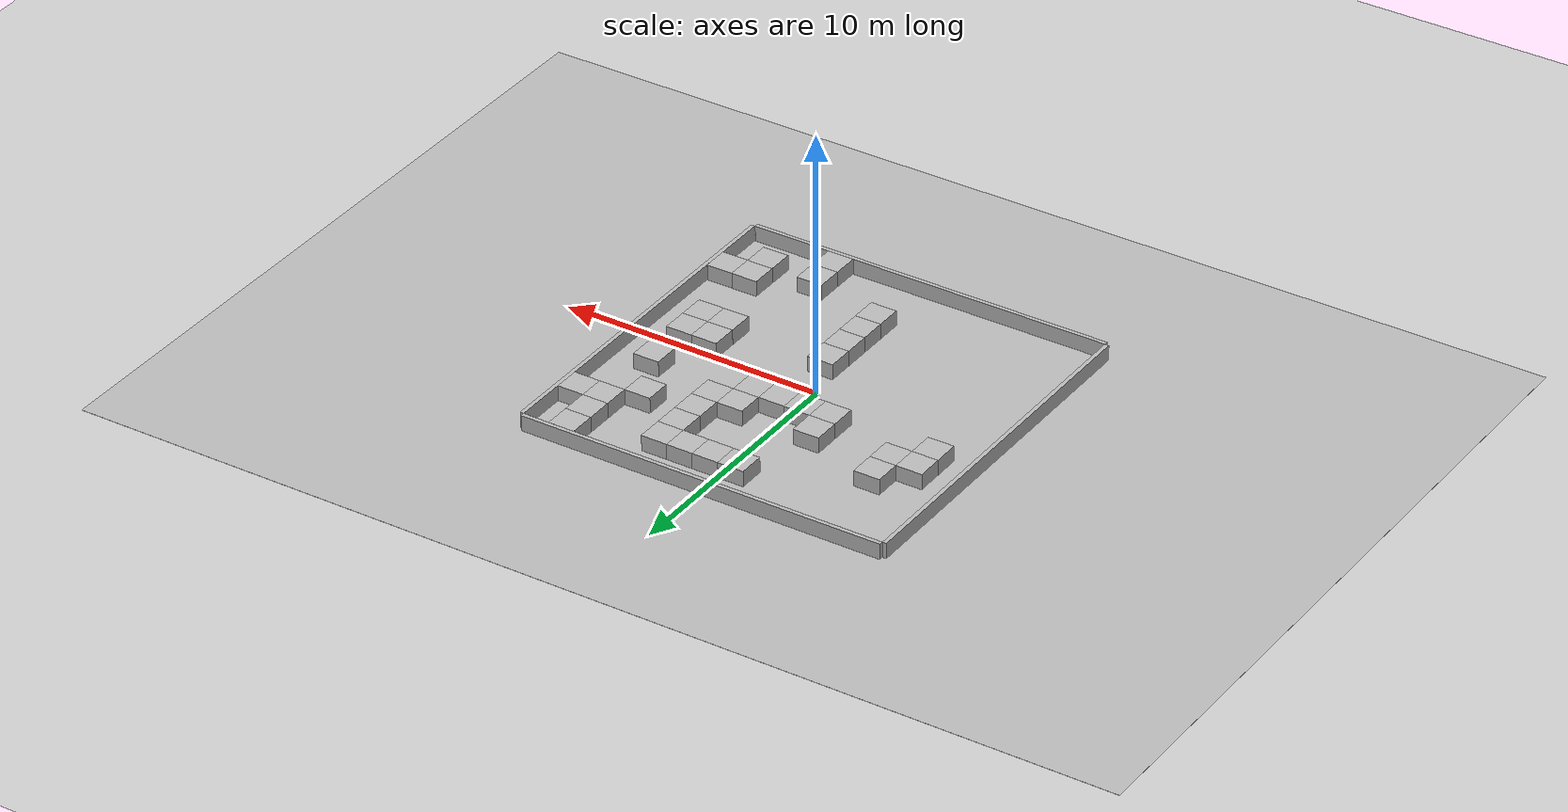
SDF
<sdf version="1.6">
 <world name="default">
  <model name="ground_plane">
   <static>1</static>
   <link name="link">
    <collision name="collision">
     <geometry><plane><normal>0 0 1</normal><size>50 50</size></plane></geometry>
     <surface><friction><ode><mu>100</mu><mu2>50</mu2></ode></friction></surface>
    </collision>
    <visual name="visual">
     <cast_shadows>0</cast_shadows>
     <geometry><plane><normal>0 0 1</normal><size>100 100</size></plane></geometry>
     <material>
      <script><name>Gazebo/Grey</name><uri>file://media/materials/scripts/gazebo.material</uri></script>
     </material>
    </visual>
    <velocity_decay><linear>0</linear><angular>0</angular></velocity_decay>
   </link>
  </model>
  <model name="unit_box">
   <pose>5.5 6.5 0.5 0 -0 0</pose>
   <static>1</static>
   <link name="link">
    <inertial>
     <mass>1</mass>
     <inertia>
      <ixx>0.166667</ixx>
      <ixy>0</ixy>
      <ixz>0</ixz>
      <iyy>0.166667</iyy>
      <iyz>0</iyz>
      <izz>0.166667</izz>
     </inertia>
    </inertial>
    <collision name="collision"><geometry><box><size>0.999998 1 1</size></box></geometry></collision>
    <visual name="visual">
     <geometry><mesh><uri>model://concrete_cube_1m/meshes/concrete_cube_1m.dae</uri></mesh></geometry>
    </visual>
   </link>
  </model>
  <model name="outer_barrier_1">
   <pose>-7.075 0 0.5 0 -0 0</pose>
   <static>1</static>
   <link name="link">
    <inertial>
     <mass>1</mass>
     <inertia>
      <ixx>0.166667</ixx>
      <ixy>0</ixy>
      <ixz>0</ixz>
      <iyy>0.166667</iyy>
      <iyz>0</iyz>
      <izz>0.166667</izz>
     </inertia>
    </inertial>
    <collision name="collision"><geometry><box><size>0.2 14 1</size></box></geometry></collision>
    <visual name="visual">
     <geometry><mesh><uri>model://concrete_barrier_14m/meshes/concrete_barrier_14m.dae</uri></mesh></geometry>
    </visual>
   </link>
  </model>
  <model name="outer_barrier_2">
   <pose>7.075 0 0.5 0 -0 0</pose>
   <static>1</static>
   <link name="link">
    <inertial>
     <mass>1</mass>
     <inertia>
      <ixx>0.166667</ixx>
      <ixy>0</ixy>
      <ixz>0</ixz>
      <iyy>0.166667</iyy>
      <iyz>0</iyz>
      <izz>0.166667</izz>
     </inertia>
    </inertial>
    <collision name="collision"><geometry><box><size>0.2 14 1</size></box></geometry></collision>
    <visual name="visual">
     <geometry><mesh><uri>model://concrete_barrier_14m/meshes/concrete_barrier_14m.dae</uri></mesh></geometry>
    </visual>
   </link>
  </model>
  <model name="outer_barrier_3">
   <pose>0 7.075 0.5 0 -0 1.5708</pose>
   <static>1</static>
   <link name="link">
    <inertial>
     <mass>1</mass>
     <inertia>
      <ixx>0.166667</ixx>
      <ixy>0</ixy>
      <ixz>0</ixz>
      <iyy>0.166667</iyy>
      <iyz>0</iyz>
      <izz>0.166667</izz>
     </inertia>
    </inertial>
    <collision name="collision"><geometry><box><size>0.2 14 1</size></box></geometry></collision>
    <visual name="visual">
     <geometry><mesh><uri>model://concrete_barrier_14m/meshes/concrete_barrier_14m.dae</uri></mesh></geometry>
    </visual>
   </link>
  </model>
  <model name="outer_barrier_4">
   <pose>0 -7.075 0.5 0 -0 1.5708</pose>
   <static>1</static>
   <link name="link">
    <inertial>
     <mass>1</mass>
     <inertia>
      <ixx>0.166667</ixx>
      <ixy>0</ixy>
      <ixz>0</ixz>
      <iyy>0.166667</iyy>
      <iyz>0</iyz>
      <izz>0.166667</izz>
     </inertia>
    </inertial>
    <collision name="collision"><geometry><box><size>0.2 14 1</size></box></geometry></collision>
    <visual name="visual">
     <geometry><mesh><uri>model://concrete_barrier_14m/meshes/concrete_barrier_14m.dae</uri></mesh></geometry>
    </visual>
   </link>
  </model>
  <model name="box_01">
   <pose>5.5 5.5 0.5 0 -0 0</pose>
   <static>1</static>
   <link name="link">
    <inertial>
     <mass>1</mass>
     <inertia>
      <ixx>0.166667</ixx>
      <ixy>0</ixy>
      <ixz>0</ixz>
      <iyy>0.166667</iyy>
      <iyz>0</iyz>
      <izz>0.166667</izz>
     </inertia>
    </inertial>
    <collision name="collision"><geometry><box><size>0.999998 1 1</size></box></geometry></collision>
    <visual name="visual">
     <geometry><mesh><uri>model://concrete_cube_1m/meshes/concrete_cube_1m.dae</uri></mesh></geometry>
    </visual>
   </link>
  </model>
  <model name="box_02">
   <pose>4.5 3.5 0.5 0 -0 0</pose>
   <static>1</static>
   <link name="link">
    <inertial>
     <mass>1</mass>
     <inertia>
      <ixx>0.166667</ixx>
      <ixy>0</ixy>
      <ixz>0</ixz>
      <iyy>0.166667</iyy>
      <iyz>0</iyz>
      <izz>0.166667</izz>
     </inertia>
    </inertial>
    <collision name="collision"><geometry><box><size>0.999998 1 1</size></box></geometry></collision>
    <visual name="visual">
     <geometry><mesh><uri>model://concrete_cube_1m/meshes/concrete_cube_1m.dae</uri></mesh></geometry>
    </visual>
   </link>
  </model>
  <model name="box_04">
   <pose>0.5 -1.5 0.5 0 -0 0</pose>
   <static>1</static>
   <link name="link">
    <inertial>
     <mass>1</mass>
     <inertia>
      <ixx>0.166667</ixx>
      <ixy>0</ixy>
      <ixz>0</ixz>
      <iyy>0.166667</iyy>
      <iyz>0</iyz>
      <izz>0.166667</izz>
     </inertia>
    </inertial>
    <collision name="collision"><geometry><box><size>0.999998 1 1</size></box></geometry></collision>
    <visual name="visual">
     <geometry><mesh><uri>model://concrete_cube_1m/meshes/concrete_cube_1m.dae</uri></mesh></geometry>
    </visual>
   </link>
  </model>
  <model name="box_05">
   <pose>0.5 -2.5 0.5 0 -0 0</pose>
   <static>1</static>
   <link name="link">
    <inertial>
     <mass>1</mass>
     <inertia>
      <ixx>0.166667</ixx>
      <ixy>0</ixy>
      <ixz>0</ixz>
      <iyy>0.166667</iyy>
      <iyz>0</iyz>
      <izz>0.166667</izz>
     </inertia>
    </inertial>
    <collision name="collision"><geometry><box><size>0.999998 1 1</size></box></geometry></collision>
    <visual name="visual">
     <geometry><mesh><uri>model://concrete_cube_1m/meshes/concrete_cube_1m.dae</uri></mesh></geometry>
    </visual>
   </link>
  </model>
  <model name="box_07">
   <pose>0.5 -3.5 0.5 0 -0 0</pose>
   <static>1</static>
   <link name="link">
    <inertial>
     <mass>1</mass>
     <inertia>
      <ixx>0.166667</ixx>
      <ixy>0</ixy>
      <ixz>0</ixz>
      <iyy>0.166667</iyy>
      <iyz>0</iyz>
      <izz>0.166667</izz>
     </inertia>
    </inertial>
    <collision name="collision"><geometry><box><size>0.999998 1 1</size></box></geometry></collision>
    <visual name="visual">
     <geometry><mesh><uri>model://concrete_cube_1m/meshes/concrete_cube_1m.dae</uri></mesh></geometry>
    </visual>
   </link>
  </model>
  <model name="box_08">
   <pose>3.5 -5.5 0.5 0 -0 0</pose>
   <static>1</static>
   <link name="link">
    <inertial>
     <mass>1</mass>
     <inertia>
      <ixx>0.166667</ixx>
      <ixy>0</ixy>
      <ixz>0</ixz>
      <iyy>0.166667</iyy>
      <iyz>0</iyz>
      <izz>0.166667</izz>
     </inertia>
    </inertial>
    <collision name="collision"><geometry><box><size>0.999998 1 1</size></box></geometry></collision>
    <visual name="visual">
     <geometry><mesh><uri>model://concrete_cube_1m/meshes/concrete_cube_1m.dae</uri></mesh></geometry>
    </visual>
   </link>
  </model>
  <model name="box_09">
   <pose>3.5 -6.5 0.5 0 -0 0</pose>
   <static>1</static>
   <link name="link">
    <inertial>
     <mass>1</mass>
     <inertia>
      <ixx>0.166667</ixx>
      <ixy>0</ixy>
      <ixz>0</ixz>
      <iyy>0.166667</iyy>
      <iyz>0</iyz>
      <izz>0.166667</izz>
     </inertia>
    </inertial>
    <collision name="collision"><geometry><box><size>0.999998 1 1</size></box></geometry></collision>
    <visual name="visual">
     <geometry><mesh><uri>model://concrete_cube_1m/meshes/concrete_cube_1m.dae</uri></mesh></geometry>
    </visual>
   </link>
  </model>
  <model name="box_10">
   <pose>2.5 5.5 0.5 0 -0 0</pose>
   <static>1</static>
   <link name="link">
    <inertial>
     <mass>1</mass>
     <inertia>
      <ixx>0.166667</ixx>
      <ixy>0</ixy>
      <ixz>0</ixz>
      <iyy>0.166667</iyy>
      <iyz>0</iyz>
      <izz>0.166667</izz>
     </inertia>
    </inertial>
    <collision name="collision"><geometry><box><size>0.999998 1 1</size></box></geometry></collision>
    <visual name="visual">
     <geometry><mesh><uri>model://concrete_cube_1m/meshes/concrete_cube_1m.dae</uri></mesh></geometry>
    </visual>
   </link>
  </model>
  <model name="box_11">
   <pose>1.5 2.5 0.5 0 -0 0</pose>
   <static>1</static>
   <link name="link">
    <inertial>
     <mass>1</mass>
     <inertia>
      <ixx>0.166667</ixx>
      <ixy>0</ixy>
      <ixz>0</ixz>
      <iyy>0.166667</iyy>
      <iyz>0</iyz>
      <izz>0.166667</izz>
     </inertia>
    </inertial>
    <collision name="collision"><geometry><box><size>0.999998 1 1</size></box></geometry></collision>
    <visual name="visual">
     <geometry><mesh><uri>model://concrete_cube_1m/meshes/concrete_cube_1m.dae</uri></mesh></geometry>
    </visual>
   </link>
  </model>
  <model name="box_12">
   <pose>-0.5 5.5 0.5 0 -0 0</pose>
   <static>1</static>
   <link name="link">
    <inertial>
     <mass>1</mass>
     <inertia>
      <ixx>0.166667</ixx>
      <ixy>0</ixy>
      <ixz>0</ixz>
      <iyy>0.166667</iyy>
      <iyz>0</iyz>
      <izz>0.166667</izz>
     </inertia>
    </inertial>
    <collision name="collision"><geometry><box><size>0.999998 1 1</size></box></geometry></collision>
    <visual name="visual">
     <geometry><mesh><uri>model://concrete_cube_1m/meshes/concrete_cube_1m.dae</uri></mesh></geometry>
    </visual>
   </link>
  </model>
  <model name="box_13">
   <pose>2.5 2.5 0.5 0 -0 0</pose>
   <static>1</static>
   <link name="link">
    <inertial>
     <mass>1</mass>
     <inertia>
      <ixx>0.166667</ixx>
      <ixy>0</ixy>
      <ixz>0</ixz>
      <iyy>0.166667</iyy>
      <iyz>0</iyz>
      <izz>0.166667</izz>
     </inertia>
    </inertial>
    <collision name="collision"><geometry><box><size>0.999998 1 1</size></box></geometry></collision>
    <visual name="visual">
     <geometry><mesh><uri>model://concrete_cube_1m/meshes/concrete_cube_1m.dae</uri></mesh></geometry>
    </visual>
   </link>
  </model>
  <model name="box_14">
   <pose>4.5 -0.5 0.5 0 -0 0</pose>
   <static>1</static>
   <link name="link">
    <inertial>
     <mass>1</mass>
     <inertia>
      <ixx>0.166667</ixx>
      <ixy>0</ixy>
      <ixz>0</ixz>
      <iyy>0.166667</iyy>
      <iyz>0</iyz>
      <izz>0.166667</izz>
     </inertia>
    </inertial>
    <collision name="collision"><geometry><box><size>0.999998 1 1</size></box></geometry></collision>
    <visual name="visual">
     <geometry><mesh><uri>model://concrete_cube_1m/meshes/concrete_cube_1m.dae</uri></mesh></geometry>
    </visual>
   </link>
  </model>
  <model name="box_15">
   <pose>4.5 -1.5 0.5 0 -0 0</pose>
   <static>1</static>
   <link name="link">
    <inertial>
     <mass>1</mass>
     <inertia>
      <ixx>0.166667</ixx>
      <ixy>0</ixy>
      <ixz>0</ixz>
      <iyy>0.166667</iyy>
      <iyz>0</iyz>
      <izz>0.166667</izz>
     </inertia>
    </inertial>
    <collision name="collision"><geometry><box><size>0.999998 1 1</size></box></geometry></collision>
    <visual name="visual">
     <geometry><mesh><uri>model://concrete_cube_1m/meshes/concrete_cube_1m.dae</uri></mesh></geometry>
    </visual>
   </link>
  </model>
  <model name="box_17">
   <pose>1.5 1.5 0.5 0 -0 0</pose>
   <static>1</static>
   <link name="link">
    <inertial>
     <mass>1</mass>
     <inertia>
      <ixx>0.166667</ixx>
      <ixy>0</ixy>
      <ixz>0</ixz>
      <iyy>0.166667</iyy>
      <iyz>0</iyz>
      <izz>0.166667</izz>
     </inertia>
    </inertial>
    <collision name="collision"><geometry><box><size>0.999998 1 1</size></box></geometry></collision>
    <visual name="visual">
     <geometry><mesh><uri>model://concrete_cube_1m/meshes/concrete_cube_1m.dae</uri></mesh></geometry>
    </visual>
   </link>
  </model>
  <model name="box_18">
   <pose>0.5 1.5 0.5 0 -0 0</pose>
   <static>1</static>
   <link name="link">
    <inertial>
     <mass>1</mass>
     <inertia>
      <ixx>0.166667</ixx>
      <ixy>0</ixy>
      <ixz>0</ixz>
      <iyy>0.166667</iyy>
      <iyz>0</iyz>
      <izz>0.166667</izz>
     </inertia>
    </inertial>
    <collision name="collision"><geometry><box><size>0.999998 1 1</size></box></geometry></collision>
    <visual name="visual">
     <geometry><mesh><uri>model://concrete_cube_1m/meshes/concrete_cube_1m.dae</uri></mesh></geometry>
    </visual>
   </link>
  </model>
  <model name="box_19">
   <pose>5.5 -0.5 0.5 0 -0 0</pose>
   <static>1</static>
   <link name="link">
    <inertial>
     <mass>1</mass>
     <inertia>
      <ixx>0.166667</ixx>
      <ixy>0</ixy>
      <ixz>0</ixz>
      <iyy>0.166667</iyy>
      <iyz>0</iyz>
      <izz>0.166667</izz>
     </inertia>
    </inertial>
    <collision name="collision"><geometry><box><size>0.999998 1 1</size></box></geometry></collision>
    <visual name="visual">
     <geometry><mesh><uri>model://concrete_cube_1m/meshes/concrete_cube_1m.dae</uri></mesh></geometry>
    </visual>
   </link>
  </model>
  <model name="box_20">
   <pose>5.5 -1.5 0.5 0 -0 0</pose>
   <static>1</static>
   <link name="link">
    <inertial>
     <mass>1</mass>
     <inertia>
      <ixx>0.166667</ixx>
      <ixy>0</ixy>
      <ixz>0</ixz>
      <iyy>0.166667</iyy>
      <iyz>0</iyz>
      <izz>0.166667</izz>
     </inertia>
    </inertial>
    <collision name="collision"><geometry><box><size>0.999998 1 1</size></box></geometry></collision>
    <visual name="visual">
     <geometry><mesh><uri>model://concrete_cube_1m/meshes/concrete_cube_1m.dae</uri></mesh></geometry>
    </visual>
   </link>
  </model>
  <model name="box_23">
   <pose>0.5 5.5 0.5 0 -0 0</pose>
   <static>1</static>
   <link name="link">
    <inertial>
     <mass>1</mass>
     <inertia>
      <ixx>0.166667</ixx>
      <ixy>0</ixy>
      <ixz>0</ixz>
      <iyy>0.166667</iyy>
      <iyz>0</iyz>
      <izz>0.166667</izz>
     </inertia>
    </inertial>
    <collision name="collision"><geometry><box><size>0.999998 1 1</size></box></geometry></collision>
    <visual name="visual">
     <geometry><mesh><uri>model://concrete_cube_1m/meshes/concrete_cube_1m.dae</uri></mesh></geometry>
    </visual>
   </link>
  </model>
  <model name="box_24">
   <pose>1.5 5.5 0.5 0 -0 0</pose>
   <static>1</static>
   <link name="link">
    <inertial>
     <mass>1</mass>
     <inertia>
      <ixx>0.166667</ixx>
      <ixy>0</ixy>
      <ixz>0</ixz>
      <iyy>0.166667</iyy>
      <iyz>0</iyz>
      <izz>0.166667</izz>
     </inertia>
    </inertial>
    <collision name="collision"><geometry><box><size>0.999998 1 1</size></box></geometry></collision>
    <visual name="visual">
     <geometry><mesh><uri>model://concrete_cube_1m/meshes/concrete_cube_1m.dae</uri></mesh></geometry>
    </visual>
   </link>
  </model>
  <model name="box_25">
   <pose>2.5 4.5 0.5 0 -0 0</pose>
   <static>1</static>
   <link name="link">
    <inertial>
     <mass>1</mass>
     <inertia>
      <ixx>0.166667</ixx>
      <ixy>0</ixy>
      <ixz>0</ixz>
      <iyy>0.166667</iyy>
      <iyz>0</iyz>
      <izz>0.166667</izz>
     </inertia>
    </inertial>
    <collision name="collision"><geometry><box><size>0.999998 1 1</size></box></geometry></collision>
    <visual name="visual">
     <geometry><mesh><uri>model://concrete_cube_1m/meshes/concrete_cube_1m.dae</uri></mesh></geometry>
    </visual>
   </link>
  </model>
  <model name="box_26">
   <pose>2.5 3.5 0.5 0 -0 0</pose>
   <static>1</static>
   <link name="link">
    <inertial>
     <mass>1</mass>
     <inertia>
      <ixx>0.166667</ixx>
      <ixy>0</ixy>
      <ixz>0</ixz>
      <iyy>0.166667</iyy>
      <iyz>0</iyz>
      <izz>0.166667</izz>
     </inertia>
    </inertial>
    <collision name="collision"><geometry><box><size>0.999998 1 1</size></box></geometry></collision>
    <visual name="visual">
     <geometry><mesh><uri>model://concrete_cube_1m/meshes/concrete_cube_1m.dae</uri></mesh></geometry>
    </visual>
   </link>
  </model>
  <model name="box_27">
   <pose>5.5 4.5 0.5 0 -0 0</pose>
   <static>1</static>
   <link name="link">
    <inertial>
     <mass>1</mass>
     <inertia>
      <ixx>0.166667</ixx>
      <ixy>0</ixy>
      <ixz>0</ixz>
      <iyy>0.166667</iyy>
      <iyz>0</iyz>
      <izz>0.166667</izz>
     </inertia>
    </inertial>
    <collision name="collision"><geometry><box><size>0.999998 1 1</size></box></geometry></collision>
    <visual name="visual">
     <geometry><mesh><uri>model://concrete_cube_1m/meshes/concrete_cube_1m.dae</uri></mesh></geometry>
    </visual>
   </link>
  </model>
  <model name="box_28">
   <pose>6.5 4.5 0.5 0 -0 0</pose>
   <static>1</static>
   <link name="link">
    <inertial>
     <mass>1</mass>
     <inertia>
      <ixx>0.166667</ixx>
      <ixy>0</ixy>
      <ixz>0</ixz>
      <iyy>0.166667</iyy>
      <iyz>0</iyz>
      <izz>0.166667</izz>
     </inertia>
    </inertial>
    <collision name="collision"><geometry><box><size>0.999998 1 1</size></box></geometry></collision>
    <visual name="visual">
     <geometry><mesh><uri>model://concrete_cube_1m/meshes/concrete_cube_1m.dae</uri></mesh></geometry>
    </visual>
   </link>
  </model>
  <model name="box_29">
   <pose>0.5 -4.5 0.5 0 -0 0</pose>
   <static>1</static>
   <link name="link">
    <inertial>
     <mass>1</mass>
     <inertia>
      <ixx>0.166667</ixx>
      <ixy>0</ixy>
      <ixz>0</ixz>
      <iyy>0.166667</iyy>
      <iyz>0</iyz>
      <izz>0.166667</izz>
     </inertia>
    </inertial>
    <collision name="collision"><geometry><box><size>0.999998 1 1</size></box></geometry></collision>
    <visual name="visual">
     <geometry><mesh><uri>model://concrete_cube_1m/meshes/concrete_cube_1m.dae</uri></mesh></geometry>
    </visual>
   </link>
  </model>
  <model name="box_30">
   <pose>-5.5 1.5 0.5 0 -0 0</pose>
   <static>1</static>
   <link name="link">
    <inertial>
     <mass>1</mass>
     <inertia>
      <ixx>0.166667</ixx>
      <ixy>0</ixy>
      <ixz>0</ixz>
      <iyy>0.166667</iyy>
      <iyz>0</iyz>
      <izz>0.166667</izz>
     </inertia>
    </inertial>
    <collision name="collision"><geometry><box><size>0.999998 1 1</size></box></geometry></collision>
    <visual name="visual">
     <geometry><mesh><uri>model://concrete_cube_1m/meshes/concrete_cube_1m.dae</uri></mesh></geometry>
    </visual>
   </link>
  </model>
  <model name="box_31">
   <pose>-5.5 2.5 0.5 0 -0 0</pose>
   <static>1</static>
   <link name="link">
    <inertial>
     <mass>1</mass>
     <inertia>
      <ixx>0.166667</ixx>
      <ixy>0</ixy>
      <ixz>0</ixz>
      <iyy>0.166667</iyy>
      <iyz>0</iyz>
      <izz>0.166667</izz>
     </inertia>
    </inertial>
    <collision name="collision"><geometry><box><size>0.999998 1 1</size></box></geometry></collision>
    <visual name="visual">
     <geometry><mesh><uri>model://concrete_cube_1m/meshes/concrete_cube_1m.dae</uri></mesh></geometry>
    </visual>
   </link>
  </model>
  <model name="box_32">
   <pose>-4.5 2.5 0.5 0 -0 0</pose>
   <static>1</static>
   <link name="link">
    <inertial>
     <mass>1</mass>
     <inertia>
      <ixx>0.166667</ixx>
      <ixy>0</ixy>
      <ixz>0</ixz>
      <iyy>0.166667</iyy>
      <iyz>0</iyz>
      <izz>0.166667</izz>
     </inertia>
    </inertial>
    <collision name="collision"><geometry><box><size>0.999998 1 1</size></box></geometry></collision>
    <visual name="visual">
     <geometry><mesh><uri>model://concrete_cube_1m/meshes/concrete_cube_1m.dae</uri></mesh></geometry>
    </visual>
   </link>
  </model>
  <model name="box_33">
   <pose>-4.5 3.5 0.5 0 -0 0</pose>
   <static>1</static>
   <link name="link">
    <inertial>
     <mass>1</mass>
     <inertia>
      <ixx>0.166667</ixx>
      <ixy>0</ixy>
      <ixz>0</ixz>
      <iyy>0.166667</iyy>
      <iyz>0</iyz>
      <izz>0.166667</izz>
     </inertia>
    </inertial>
    <collision name="collision"><geometry><box><size>0.999998 1 1</size></box></geometry></collision>
    <visual name="visual">
     <geometry><mesh><uri>model://concrete_cube_1m/meshes/concrete_cube_1m.dae</uri></mesh></geometry>
    </visual>
   </link>
  </model>
  <model name="box_36">
   <pose>-0.5 1.5 0.5 0 -0 0</pose>
   <static>1</static>
   <link name="link">
    <inertial>
     <mass>1</mass>
     <inertia>
      <ixx>0.166667</ixx>
      <ixy>0</ixy>
      <ixz>0</ixz>
      <iyy>0.166667</iyy>
      <iyz>0</iyz>
      <izz>0.166667</izz>
     </inertia>
    </inertial>
    <collision name="collision"><geometry><box><size>0.999998 1 1</size></box></geometry></collision>
    <visual name="visual">
     <geometry><mesh><uri>model://concrete_cube_1m/meshes/concrete_cube_1m.dae</uri></mesh></geometry>
    </visual>
   </link>
  </model>
  <model name="box_37">
   <pose>-1.5 1.5 0.5 0 -0 0</pose>
   <static>1</static>
   <link name="link">
    <inertial>
     <mass>1</mass>
     <inertia>
      <ixx>0.166667</ixx>
      <ixy>0</ixy>
      <ixz>0</ixz>
      <iyy>0.166667</iyy>
      <iyz>0</iyz>
      <izz>0.166667</izz>
     </inertia>
    </inertial>
    <collision name="collision"><geometry><box><size>0.999998 1 1</size></box></geometry></collision>
    <visual name="visual">
     <geometry><mesh><uri>model://concrete_cube_1m/meshes/concrete_cube_1m.dae</uri></mesh></geometry>
    </visual>
   </link>
  </model>
  <model name="box_38">
   <pose>-1.5 2.5 0.5 0 -0 0</pose>
   <static>1</static>
   <link name="link">
    <inertial>
     <mass>1</mass>
     <inertia>
      <ixx>0.166667</ixx>
      <ixy>0</ixy>
      <ixz>0</ixz>
      <iyy>0.166667</iyy>
      <iyz>0</iyz>
      <izz>0.166667</izz>
     </inertia>
    </inertial>
    <collision name="collision"><geometry><box><size>0.999998 1 1</size></box></geometry></collision>
    <visual name="visual">
     <geometry><mesh><uri>model://concrete_cube_1m/meshes/concrete_cube_1m.dae</uri></mesh></geometry>
    </visual>
   </link>
  </model>
  <model name="box_39">
   <pose>5.5 -4.5 0.5 0 -0 0</pose>
   <static>1</static>
   <link name="link">
    <inertial>
     <mass>1</mass>
     <inertia>
      <ixx>0.166667</ixx>
      <ixy>0</ixy>
      <ixz>0</ixz>
      <iyy>0.166667</iyy>
      <iyz>0</iyz>
      <izz>0.166667</izz>
     </inertia>
    </inertial>
    <collision name="collision"><geometry><box><size>0.999998 1 1</size></box></geometry></collision>
    <visual name="visual">
     <geometry><mesh><uri>model://concrete_cube_1m/meshes/concrete_cube_1m.dae</uri></mesh></geometry>
    </visual>
   </link>
  </model>
  <model name="box_40">
   <pose>6.5 -4.5 0.5 0 -0 0</pose>
   <static>1</static>
   <link name="link">
    <inertial>
     <mass>1</mass>
     <inertia>
      <ixx>0.166667</ixx>
      <ixy>0</ixy>
      <ixz>0</ixz>
      <iyy>0.166667</iyy>
      <iyz>0</iyz>
      <izz>0.166667</izz>
     </inertia>
    </inertial>
    <collision name="collision"><geometry><box><size>0.999998 1 1</size></box></geometry></collision>
    <visual name="visual">
     <geometry><mesh><uri>model://concrete_cube_1m/meshes/concrete_cube_1m.dae</uri></mesh></geometry>
    </visual>
   </link>
  </model>
  <model name="box_41">
   <pose>5.5 -5.5 0.5 0 -0 0</pose>
   <static>1</static>
   <link name="link">
    <inertial>
     <mass>1</mass>
     <inertia>
      <ixx>0.166667</ixx>
      <ixy>0</ixy>
      <ixz>0</ixz>
      <iyy>0.166667</iyy>
      <iyz>0</iyz>
      <izz>0.166667</izz>
     </inertia>
    </inertial>
    <collision name="collision"><geometry><box><size>0.999998 1 1</size></box></geometry></collision>
    <visual name="visual">
     <geometry><mesh><uri>model://concrete_cube_1m/meshes/concrete_cube_1m.dae</uri></mesh></geometry>
    </visual>
   </link>
  </model>
  <model name="box_42">
   <pose>5.5 1.5 0.5 0 -0 0</pose>
   <static>1</static>
   <link name="link">
    <inertial>
     <mass>1</mass>
     <inertia>
      <ixx>0.166667</ixx>
      <ixy>0</ixy>
      <ixz>0</ixz>
      <iyy>0.166667</iyy>
      <iyz>0</iyz>
      <izz>0.166667</izz>
     </inertia>
    </inertial>
    <collision name="collision"><geometry><box><size>0.999998 1 1</size></box></geometry></collision>
    <visual name="visual">
     <geometry><mesh><uri>model://concrete_cube_1m/meshes/concrete_cube_1m.dae</uri></mesh></geometry>
    </visual>
   </link>
  </model>
  <include><uri>model://floor_tiles</uri></include>
 </world>
</sdf>
